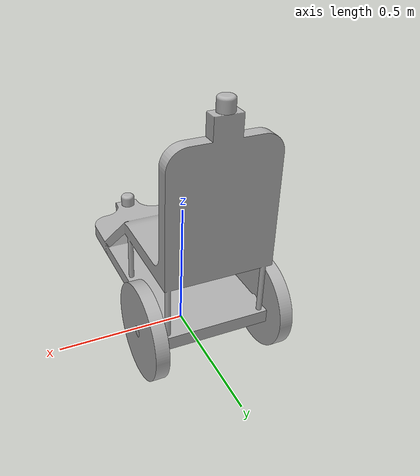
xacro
<?xml version="1.0" ?>
<robot name="whintel" xmlns:xacro="http://www.ros.org/wiki/xacro">

<xacro:include filename="$(find whintel_description)/urdf/materials.xacro" />
<xacro:include filename="$(find whintel_description)/urdf/whintel.trans" />
<xacro:include filename="$(find whintel_description)/urdf/whintel.gazebo" />
<link name="base_link">
  <inertial>
    <origin xyz="-0.00017380287337918798 -0.02270645524029277 0.34666439427092555" rpy="0 0 0"/>
    <mass value="326.55857326684753"/>
    <inertia ixx="40.140277" iyy="19.600365" izz="28.614396" ixy="0.007004" iyz="-13.170371" ixz="0.003247"/>
  </inertial>
  <visual>
    <origin xyz="0 0 0" rpy="0 0 0"/>
    <geometry>
      <mesh filename="file://$(find whintel_description)/meshes/base_link.stl" scale="0.001 0.001 0.001"/>
    </geometry>
    <material name="silver"/>
  </visual>
  <collision>
    <origin xyz="0 0 0" rpy="0 0 0"/>
    <geometry>
      <mesh filename="file://$(find whintel_description)/meshes/base_link.stl" scale="0.001 0.001 0.001"/>
    </geometry>
  </collision>
</link>

<link name="brw_1">
  <inertial>
    <origin xyz="0.025000424085475037 -2.7372171179651517e-07 9.040309259522594e-08" rpy="0 0 0"/>
    <mass value="37.269695397239936"/>
    <inertia ixx="0.578146" iyy="0.296838" izz="0.296838" ixy="0.0" iyz="0.0" ixz="0.0"/>
  </inertial>
  <visual>
    <origin xyz="0.260232 -0.200189 -0.175226" rpy="0 0 0"/>
    <geometry>
      <mesh filename="file://$(find whintel_description)/meshes/brw_1.stl" scale="0.001 0.001 0.001"/>
    </geometry>
    <material name="silver"/>
  </visual>
  <collision>
    <origin xyz="0.260232 -0.200189 -0.175226" rpy="0 0 0"/>
    <geometry>
      <mesh filename="file://$(find whintel_description)/meshes/brw_1.stl" scale="0.001 0.001 0.001"/>
    </geometry>
  </collision>
</link>

<link name="blw_1">
  <inertial>
    <origin xyz="-0.024999575914525063 -2.7372171179651517e-07 9.040309259522594e-08" rpy="0 0 0"/>
    <mass value="37.269695397239936"/>
    <inertia ixx="0.578146" iyy="0.296838" izz="0.296838" ixy="-0.0" iyz="0.0" ixz="-0.0"/>
  </inertial>
  <visual>
    <origin xyz="-0.259768 -0.200189 -0.175226" rpy="0 0 0"/>
    <geometry>
      <mesh filename="file://$(find whintel_description)/meshes/blw_1.stl" scale="0.001 0.001 0.001"/>
    </geometry>
    <material name="silver"/>
  </visual>
  <collision>
    <origin xyz="-0.259768 -0.200189 -0.175226" rpy="0 0 0"/>
    <geometry>
      <mesh filename="file://$(find whintel_description)/meshes/blw_1.stl" scale="0.001 0.001 0.001"/>
    </geometry>
  </collision>
</link>

<link name="la_1">
  <inertial>
    <origin xyz="4.240854749556805e-07 -2.737217395520908e-07 0.024382791809575366" rpy="0 0 0"/>
    <mass value="1.0803774893295328"/>
    <inertia ixx="0.000454" iyy="0.000454" izz="0.000476" ixy="-0.0" iyz="0.0" ixz="0.0"/>
  </inertial>
  <visual>
    <origin xyz="0.000232 -0.275189 -0.980226" rpy="0 0 0"/>
    <geometry>
      <mesh filename="file://$(find whintel_description)/meshes/la_1.stl" scale="0.001 0.001 0.001"/>
    </geometry>
    <material name="silver"/>
  </visual>
  <collision>
    <origin xyz="0.000232 -0.275189 -0.980226" rpy="0 0 0"/>
    <geometry>
      <mesh filename="file://$(find whintel_description)/meshes/la_1.stl" scale="0.001 0.001 0.001"/>
    </geometry>
  </collision>
</link>

<link name="lb_1">
  <inertial>
    <origin xyz="1.7230525773098005e-07 0.02999972627826064 0.049066071181366355" rpy="0 0 0"/>
    <mass value="1.064769106601666"/>
    <inertia ixx="0.000441" iyy="0.000441" izz="0.000465" ixy="-0.0" iyz="0.0" ixz="0.0"/>
  </inertial>
  <visual>
    <origin xyz="7e-06 0.644811 -0.175007" rpy="0 0 0"/>
    <geometry>
      <mesh filename="file://$(find whintel_description)/meshes/lb_1.stl" scale="0.001 0.001 0.001"/>
    </geometry>
    <material name="silver"/>
  </visual>
  <collision>
    <origin xyz="7e-06 0.644811 -0.175007" rpy="0 0 0"/>
    <geometry>
      <mesh filename="file://$(find whintel_description)/meshes/lb_1.stl" scale="0.001 0.001 0.001"/>
    </geometry>
  </collision>
</link>

<joint name="brj" type="continuous">
  <origin xyz="-0.260232 0.200189 0.175226" rpy="0 0 0"/>
  <parent link="base_link"/>
  <child link="brw_1"/>
  <axis xyz="-1.0 0.0 0.0"/>
</joint>

<joint name="blj" type="continuous">
  <origin xyz="0.259768 0.200189 0.175226" rpy="0 0 0"/>
  <parent link="base_link"/>
  <child link="blw_1"/>
  <axis xyz="1.0 0.0 0.0"/>
</joint>

<joint name="laj" type="fixed">
  <origin xyz="-0.000232 0.275189 0.980226" rpy="0 0 0"/>
  <parent link="base_link"/>
  <child link="la_1"/>
</joint>

<joint name="lbj" type="fixed">
  <origin xyz="-7e-06 -0.644811 0.175007" rpy="0 0 0"/>
  <parent link="base_link"/>
  <child link="lb_1"/>
</joint>

<gazebo>
  <plugin name='diff_drive' filename='libgazebo_ros_diff_drive.so'>

    <!-- wheels -->
    <left_joint>blj</left_joint>
    <right_joint>brj</right_joint>

    <!-- kinematics -->
    <wheel_separation>0.419568</wheel_separation>
    <wheel_diameter>0.350</wheel_diameter>

    <!-- limits -->
    <max_wheel_torque>160</max_wheel_torque>
    <max_wheel_acceleration>3.0</max_wheel_acceleration>

    <!-- output -->
    <publish_odom>true</publish_odom>
    <publish_odom_tf>false</publish_odom_tf>
    <publish_wheel_tf>true</publish_wheel_tf>

    <odometry_frame>odom</odometry_frame>
    <robot_base_frame>base_link</robot_base_frame>

  </plugin>
</gazebo>

<gazebo reference="la_1">
  <sensor type="ray" name="lidar_la_1">
    <pose>0 0 0 0 0 0</pose>
    <visualize>false</visualize>
    <update_rate>10.0</update_rate>
    <ray>
      <scan>
        <horizontal>
          <samples>512</samples>
          <resolution>1</resolution>
          <min_angle>-3.14</min_angle>
          <max_angle>3.14</max_angle>
        </horizontal>
        <vertical>
          <samples>16</samples>
          <resolution>1</resolution>
          <min_angle>-0.2618</min_angle>
          <max_angle>0.2618</max_angle>
        </vertical>
      </scan>
      <range>
        <min>0.1</min>
        <max>100.0</max>
        <resolution>0.00000001</resolution>
      </range>
    </ray>
    <plugin name="gazebo_ros_laser_controller_la" filename="libgazebo_ros_ray_sensor.so">
      <topicName>/la/laser/scan</topicName>
      <frame_name>la_1</frame_name>
    </plugin>
  </sensor>
</gazebo>
<!-- REAR LiDAR (lb_1) -->
 <gazebo reference="lb_1">
   <sensor type="ray" name="lidar_lb_1">
     <pose>0 0 0 0 0 0</pose>
     <visualize>false</visualize>
     <update_rate>10.0</update_rate>
     <ray>
       <scan>
         <horizontal>
           <samples>512</samples>
           <resolution>1</resolution>
           <min_angle>-3.14</min_angle>
           <max_angle>0</max_angle>
         </horizontal>
         <vertical>
           <samples>16</samples>
           <resolution>1</resolution>
           <min_angle>-0.2618</min_angle>
           <max_angle>0.2618</max_angle>
         </vertical>
       </scan>
       <range>
         <min>0.1</min>
         <max>34.0</max>
         <resolution>0.01</resolution>
       </range>
     </ray>
     <plugin name="gazebo_ros_laser_controller_lb" filename="libgazebo_ros_ray_sensor.so">
       <topicName>/lb/laser/scan</topicName>
       <frameName>lb_1</frameName>
     </plugin>
   </sensor>
 </gazebo>

 <gazebo reference="la_1">
    <gravity>true</gravity>
    <sensor name="imu_sensor" type="imu">
      <always_on>true</always_on>
      <update_rate>100</update_rate>
      <visualize>true</visualize>
      <plugin filename="libgazebo_ros_imu_sensor.so" name="imu_plugin">
        <ros>
            <remapping>~/out:=imu</remapping>
          </ros>
        <topicName>imu</topicName>
        <bodyName>la_1</bodyName>
        <updateRateHZ>10.0</updateRateHZ>
        <xyzOffset>0 0 0</xyzOffset>
        <rpyOffset>0 0 0</rpyOffset>
        <frameName>la_1</frameName>
        <initialOrientationAsReference>false</initialOrientationAsReference>
      </plugin>
      <pose>0 0 0 0 0 0</pose>
    </sensor>
  </gazebo>

</robot>

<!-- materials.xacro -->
<robot name="whintel" xmlns:xacro="http://www.ros.org/wiki/xacro" >

<material name="silver">
  <color rgba="0.700 0.700 0.700 1.000"/>
</material>

</robot>

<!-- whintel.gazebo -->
<robot name="whintel" xmlns:xacro="http://www.ros.org/wiki/xacro" >

<xacro:property name="body_color" value="Gazebo/Silver" />

<gazebo>
  <plugin name="control" filename="libgazebo_ros_control.so"/>
</gazebo>
<gazebo reference="base_link">
  <material>${body_color}</material>
  <mu1>0.2</mu1>
  <mu2>0.2</mu2>
  <self_collide>true</self_collide>
  <gravity>true</gravity>
</gazebo>

<gazebo reference="brw_1">
  <material>${body_color}</material>
  <mu1>0.2</mu1>
  <mu2>0.2</mu2>
  <self_collide>true</self_collide>
</gazebo>

<gazebo reference="blw_1">
  <material>${body_color}</material>
  <mu1>0.2</mu1>
  <mu2>0.2</mu2>
  <self_collide>true</self_collide>
</gazebo>

<gazebo reference="la_1">
  <material>${body_color}</material>
  <mu1>0.2</mu1>
  <mu2>0.2</mu2>
  <self_collide>true</self_collide>
</gazebo>

<gazebo reference="lb_1">
  <material>${body_color}</material>
  <mu1>0.2</mu1>
  <mu2>0.2</mu2>
  <self_collide>true</self_collide>
</gazebo>

</robot>
